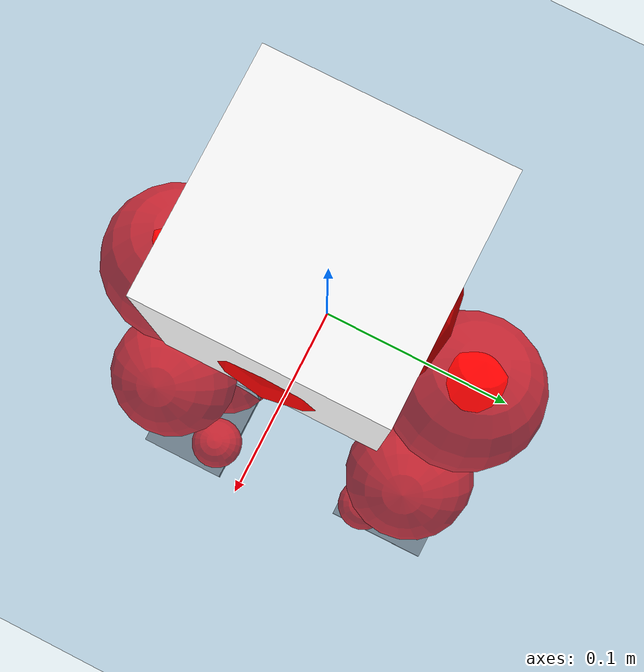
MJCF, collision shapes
<mujoco model="pi_12dof_release_v1">
  <compiler angle="radian" assetdir="assets" balanceinertia="true" inertiafromgeom="false"/>

  <option timestep="0.005" density="1.2" viscosity="2e-05"/>

  <size nkey="1"/>

  <visual>
    <quality shadowsize="8192"/>
    <map shadowclip="0.5"/>
  </visual>

  <default>
    <default class="/">
      <joint armature="0.01" damping="0.01" frictionloss="0.01"/>
      <geom contype="0" conaffinity="0" group="1" solref="-1000 -80"/>
      <site size="0.01 0.005 0.005" group="5"/>
      <general forcelimited="true" biastype="affine" gainprm="20" biasprm="0 -20 -0.5"/>
      <default class="foot">
        <geom size="0.0845 0.036 0.005" type="box" condim="6" group="4" priority="1" friction="0.9 0.2 0.2" solimp="0.015 1 0.005"/>
      </default>
      <default class="reward_collision_sphere">
        <geom group="5" rgba="1 0 0 1"/>
      </default>
    </default>
  </default>

  <asset>
    <texture type="skybox" colorspace="auto" name="//unnamed_texture_0" builtin="gradient" rgb1="0.95 0.95 0.95" rgb2="0.95 0.95 0.95" width="100" height="600"/>
    <texture type="2d" colorspace="auto" name="texplane" builtin="checker" rgb1="0.345 0.575 0.748" rgb2="0.345 0.575 0.748" markrgb="1 1 1" width="512" height="512"/>
    <material name="MatPlane" class="/" texture="texplane" texuniform="true" texrepeat="2 2" specular="0.9"/>
    <mesh name="baselink_1" class="/" file="baselink_1.STL"/>
    <mesh name="r_hip_pitch_link" class="/" file="r_hip_pitch_link.STL"/>
    <mesh name="r_hip_roll_link" class="/" file="r_hip_roll_link.STL"/>
    <mesh name="r_thigh_link" class="/" file="r_thigh_link.STL"/>
    <mesh name="r_calf_link" class="/" file="r_calf_link.STL"/>
    <mesh name="r_ankle_pitch_link" class="/" file="r_ankle_pitch_link.STL"/>
    <mesh name="r_ankle_roll_link" class="/" file="r_ankle_roll_link.STL"/>
    <mesh name="l_hip_pitch_link" class="/" file="l_hip_pitch_link.STL"/>
    <mesh name="l_hip_roll_link" class="/" file="l_hip_roll_link.STL"/>
    <mesh name="l_thigh_link" class="/" file="l_thigh_link.STL"/>
    <mesh name="l_calf_link" class="/" file="l_calf_link.STL"/>
    <mesh name="l_ankle_pitch_link" class="/" file="l_ankle_pitch_link.STL"/>
    <mesh name="l_ankle_roll_link" class="/" file="l_ankle_roll_link.STL"/>
  </asset>

  <worldbody>
    <geom name="floor" class="/" size="100 100 0.125" type="plane" group="0" material="MatPlane"/>
    <light name="toplight_shadow" class="/" pos="0 0 5" dir="0.0990148 0.0990148 -0.990148" type="directional" ambient="0.04 0.04 0.04" diffuse="0.55 0.55 0.55" specular="0.12 0.12 0.12"/>
    <light name="toplight_fill" class="/" pos="0 0 5" dir="0.0990148 0.0990148 -0.990148" type="directional" castshadow="false" ambient="0.04 0.04 0.04" diffuse="0.3 0.3 0.3" specular="0.08 0.08 0.08"/>
    <body name="trunk" pos="-0.000370848 -0.00179809 -0.000628851" quat="1 6.66987e-06 -2.57649e-05 9.02462e-06">
      <inertial pos="0.00473123 -0.00148418 0.0503975" quat="0.695459 0.0155421 0.00686432 0.718365" mass="2.81646" diaginertia="0.00885565 0.0109515 0.0127706"/>
      <joint name="//unnamed_joint_0" type="free"/>
      <geom name="//unnamed_geom_1" class="/" type="mesh" density="0" rgba="1 1 1 1" mesh="baselink_1"/>
      <geom name="//unnamed_geom_2" class="/" size="0.0547124 0.0547124 0.0547124" pos="0 0 0.100142" type="box" rgba="1 1 1 1"/>
      <geom name="//unnamed_geom_3" class="reward_collision_sphere" size="0.0601836" pos="0 0 0.0876246"/>
      <site name="imu" class="/" pos="0.00980555 0.0136291 -0.00903298" size="0.0109425"/>
      <camera name="track" class="/" pos="0 -2.08939 0" quat="0.707107 0.707107 0 0" mode="trackcom"/>
      <camera name="ego_camera" class="/" pos="0.0739699 0 0.225321" quat="-0.5 -0.5 0.5 0.5"/>
      <body name="r_hip_pitch_link" pos="0.00298717 -0.0251816 -0.0413738" quat="0.992181 0.000366584 -0.124805 -0.000659988">
        <inertial pos="0.00129094 -0.0586469 0.00281633" quat="-0.01923 0.706859 -0.0298791 0.706461" mass="0.47839" diaginertia="0.000101332 0.00012028 0.000252861"/>
        <joint name="r_hip_pitch_joint" class="/" pos="0 0 0" axis="0.0057631 -0.999958 -0.00717609" range="-1.73995 1.19399" armature="0.0105601" damping="0.0184943" frictionloss="0.0100621"/>
        <geom name="//unnamed_geom_4" class="/" type="mesh" density="0" rgba="0.75294 0.75294 0.75294 1" mesh="r_hip_pitch_link"/>
        <geom name="//unnamed_geom_5" class="/" size="0.000547124 0.000547124 0.000547124" type="box" rgba="0.75294 0.75294 0.75294 1"/>
        <body name="r_hip_roll_link" pos="0.000867299 -0.0601832 -0.00120015" quat="0.999999 0.00039626 0.000624866 0.000812627">
          <inertial pos="0.00066974 0.00286555 -0.0753471" quat="0.70613 -0.0808519 -0.0778137 0.699135" mass="0.50903" diaginertia="0.000306049 0.000342389 0.000379536"/>
          <joint name="r_hip_roll_joint" class="/" pos="0 0 0" axis="-0.999919 -0.00521125 -0.0115729" range="-0.108973 0.525652" armature="0.00952703" damping="0.03026" frictionloss="0.0114372"/>
          <geom name="//unnamed_geom_6" class="/" type="mesh" density="0" rgba="0.75294 0.75294 0.75294 1" mesh="r_hip_roll_link"/>
          <geom name="//unnamed_geom_7" class="/" size="0.000547124 0.000547124 0.000547124" type="box" rgba="0.75294 0.75294 0.75294 1"/>
          <geom name="//unnamed_geom_8" class="reward_collision_sphere" size="0.0437699"/>
          <body name="r_thigh_link" pos="-0.00200297 -0.000183621 -0.0882404" quat="0.999999 -0.00123067 0.000296052 0.000527509">
            <inertial pos="0.00268655 0.000978521 -0.058838" quat="0.737496 0.675348 -0.00200076 0.00017616" mass="0.148427" diaginertia="0.000114257 0.000118151 0.000179304"/>
            <joint name="r_thigh_joint" class="/" pos="0 0 0" axis="-0.00171054 -0.0051904 -0.999985" range="-0.346767 0.599664" armature="0.00940176" damping="0.00191804" frictionloss="0.0108243"/>
            <geom name="//unnamed_geom_9" class="/" type="mesh" density="0" rgba="0.75294 0.75294 0.75294 1" mesh="r_thigh_link"/>
            <geom name="//unnamed_geom_10" class="/" size="0.000547124 0.000547124 0.000547124" type="box" rgba="0.75294 0.75294 0.75294 1"/>
            <body name="r_calf_link" pos="0.00188249 -0.00495828 -0.0901226" quat="0.947577 -1.39111e-05 0.319526 0.000126055">
              <inertial pos="-0.00316969 0.000509841 -0.0859649" quat="0.999967 -0.00577946 0.00400087 0.00412498" mass="1.0445" diaginertia="0.0031692 0.0043838 0.000542504"/>
              <joint name="r_calf_joint" class="/" pos="0 0 0" axis="0.000525167 -0.999923 0.0124134" range="-1.67418 0.703522" armature="0.0100577" damping="0.0134046" frictionloss="0.0124714"/>
              <geom name="//unnamed_geom_11" class="/" type="mesh" density="0" rgba="0.75294 0.75294 0.75294 1" mesh="r_calf_link"/>
              <geom name="//unnamed_geom_12" class="/" size="0.000547124 0.000547124 0.000547124" type="box" rgba="0.75294 0.75294 0.75294 1"/>
              <geom name="//unnamed_geom_13" class="reward_collision_sphere" size="0.0437699"/>
              <body name="r_ankle_pitch_link" pos="0.000632864 -0.000817617 -0.172165" quat="0.980239 0.000972554 -0.197815 0.000224585">
                <inertial pos="0.00193208 0.00453495 0.000579322" quat="0.000199347 0.704538 0.0103584 0.709591" mass="0.240891" diaginertia="0.000289223 0.000279826 0.000362339"/>
                <joint name="r_ankle_pitch_joint" class="/" pos="0 0 0" axis="-0.000158092 -1 5.52126e-05" range="-1.24058 0.50415" armature="0.0104556" damping="0.0206286" frictionloss="0.00956251"/>
                <geom name="//unnamed_geom_14" class="/" type="mesh" density="0" rgba="0.75294 0.75294 0.75294 1" mesh="r_ankle_pitch_link"/>
                <geom name="//unnamed_geom_15" class="/" size="0.0426757 0.0437699 0.0273562" type="box" rgba="0.75294 0.75294 0.75294 1"/>
                <body name="r_ankle_roll_link" pos="0.0755811 0.00381052 -0.00210828" quat="1 -0.000464799 -0.000138818 -0.000116349">
                  <inertial pos="-0.020593 9.81724e-05 -0.0158599" quat="0.56108 0.435586 0.422734 0.562806" mass="0.674428" diaginertia="0.00107449 0.00129213 0.000895606"/>
                  <joint name="r_ankle_roll_joint" class="/" pos="0 0 0" axis="-0.999998 -0.00146314 0.00140784" stiffness="0.00902312" range="-0.14112 0.1465" armature="0.0108322" damping="0" frictionloss="0.00941507"/>
                  <geom name="//unnamed_geom_16" class="/" type="mesh" density="0" rgba="0.75294 0.75294 0.75294 1" mesh="r_ankle_roll_link"/>
                  <geom name="//unnamed_geom_17" class="/" type="mesh" rgba="0.75294 0.75294 0.75294 1" mesh="r_ankle_roll_link"/>
                  <geom name="right_foot" class="foot" size="0.0904671 0.0360167 0.00514596" pos="-0.0502995 0 -0.0550783"/>
                  <geom name="//unnamed_geom_19" class="reward_collision_sphere" size="0.0437699" pos="-0.0493133 0 -0.0250356"/>
                  <geom name="//unnamed_geom_20" class="reward_collision_sphere" size="0.021885" pos="0.014794 0.0208939 -0.0500712"/>
                  <geom name="//unnamed_geom_21" class="reward_collision_sphere" size="0.021885" pos="-0.118352 0.0208939 -0.0500712"/>
                  <site name="right_foot" class="foot" pos="-0.0502995 0 -0.0550783" size="0.0109425"/>
                </body>
              </body>
            </body>
          </body>
        </body>
      </body>
      <body name="l_hip_pitch_link" pos="0.000273075 0.0247055 -0.0406819" quat="0.992178 -0.000411558 -0.124828 0.00112474">
        <inertial pos="0.000641102 0.0553531 0.00263384" quat="-0.033056 0.705886 0.021089 0.707239" mass="0.541328" diaginertia="0.000124578 0.00013536 0.000319295"/>
        <joint name="l_hip_pitch_joint" class="/" pos="0 0 0" axis="0.000966773 0.999999 -0.00102889" stiffness="0.00102725" range="-1.23844 1.75605" armature="0.0113639" damping="0.00444019" frictionloss="0.0122558"/>
        <geom name="//unnamed_geom_22" class="/" type="mesh" density="0" rgba="0.75294 0.75294 0.75294 1" mesh="l_hip_pitch_link"/>
        <geom name="//unnamed_geom_23" class="/" size="0.000547124 0.000547124 0.000547124" type="box" rgba="0.75294 0.75294 0.75294 1"/>
        <body name="l_hip_roll_link" pos="-0.00313987 0.0589796 0.000890765" quat="1 -0.000368809 0.000125117 -0.000120545">
          <inertial pos="-0.00233113 0.000542218 -0.076072" quat="0.689604 -0.0749982 -0.0800183 0.715834" mass="0.518117" diaginertia="0.000313721 0.000368443 0.000410687"/>
          <joint name="l_hip_roll_joint" class="/" pos="0 0 0" axis="-0.999969 0.00389039 0.00688087" range="-0.502363 0.107036" armature="0.0117444" damping="0.00628372" frictionloss="0.0123354"/>
          <geom name="//unnamed_geom_24" class="/" type="mesh" density="0" rgba="0.75294 0.75294 0.75294 1" mesh="l_hip_roll_link"/>
          <geom name="//unnamed_geom_25" class="/" size="0.000547124 0.000547124 0.000547124" type="box" rgba="0.75294 0.75294 0.75294 1"/>
          <geom name="//unnamed_geom_26" class="reward_collision_sphere" size="0.0437699"/>
          <body name="l_thigh_link" pos="-0.0032652 0.000835457 -0.0851844" quat="1 -0.000359715 -0.00048343 -9.00034e-05">
            <inertial pos="0.000957544 -0.00183081 -0.0609407" quat="0.675658 0.737199 0.00487597 -0.000249615" mass="0.157545" diaginertia="0.000121926 0.000123171 0.000184329"/>
            <joint name="l_thigh_joint" class="/" pos="0 0 0" axis="0.00176614 0.000835718 -0.999998" stiffness="0.000606401" range="-0.598814 0.304164" armature="0.00953732" damping="0.00968378" frictionloss="0.0107538"/>
            <geom name="//unnamed_geom_27" class="/" type="mesh" density="0" rgba="0.75294 0.75294 0.75294 1" mesh="l_thigh_link"/>
            <geom name="//unnamed_geom_28" class="/" size="0.000547124 0.000547124 0.000547124" type="box" rgba="0.75294 0.75294 0.75294 1"/>
            <body name="l_calf_link" pos="0.00038367 0.00034632 -0.0900518" quat="0.94765 -0.000533577 0.31931 7.91594e-05">
              <inertial pos="0.00239505 0.00494585 -0.0898406" quat="0.999923 0.00559421 -0.00619486 0.00922767" mass="1.08862" diaginertia="0.00347977 0.0046458 0.000556816"/>
              <joint name="l_calf_joint" class="/" pos="0 0 0" axis="-0.0133511 0.999888 -0.00669588" range="-0.622205 1.60071" armature="0.0120541" damping="0.0168812" frictionloss="0.0122729"/>
              <geom name="//unnamed_geom_29" class="/" type="mesh" density="0" rgba="0.75294 0.75294 0.75294 1" mesh="l_calf_link"/>
              <geom name="//unnamed_geom_30" class="/" size="0.000547124 0.000547124 0.000547124" type="box" rgba="0.75294 0.75294 0.75294 1"/>
              <geom name="//unnamed_geom_31" class="reward_collision_sphere" size="0.0437699"/>
              <body name="l_ankle_pitch_link" pos="0.000572732 0.00285901 -0.173854" quat="0.980048 0.000151546 -0.198763 0.000225789">
                <inertial pos="0.00475168 -0.00165349 0.00275607" quat="0.00127944 0.703404 0.00266289 0.710784" mass="0.22008" diaginertia="0.000275164 0.000263757 0.000355675"/>
                <joint name="l_ankle_pitch_joint" class="/" pos="0 0 0" axis="-0.00474164 0.999989 0.000205798" range="-0.538141 1.35448" armature="0.0107238" damping="0.0157036" frictionloss="0.0108996"/>
                <geom name="//unnamed_geom_32" class="/" type="mesh" density="0" rgba="0.75294 0.75294 0.75294 1" mesh="l_ankle_pitch_link"/>
                <geom name="//unnamed_geom_33" class="/" size="0.0426757 0.0437699 0.0273562" type="box" rgba="0.75294 0.75294 0.75294 1"/>
                <body name="l_ankle_roll_link" pos="0.0757353 0.00425838 0.000969156" quat="0.999999 0.000980801 -0.000324266 0.000926378">
                  <inertial pos="-0.0246326 -0.000491226 -0.0203996" quat="0.552238 0.438588 0.429594 0.564023" mass="0.684443" diaginertia="0.00105744 0.00124511 0.000878683"/>
                  <joint name="l_ankle_roll_joint" class="/" pos="0 0 0" axis="-0.999993 -0.00351573 0.00134538" range="-0.164163 0.113631" armature="0.0110293" damping="0.0100986" frictionloss="0.0103223"/>
                  <geom name="//unnamed_geom_34" class="/" type="mesh" density="0" rgba="0.75294 0.75294 0.75294 1" mesh="l_ankle_roll_link"/>
                  <geom name="//unnamed_geom_35" class="/" type="mesh" rgba="0.75294 0.75294 0.75294 1" mesh="l_ankle_roll_link"/>
                  <geom name="left_foot" class="foot" size="0.0836207 0.0408266 0.00541023" pos="-0.0502995 0 -0.0550783"/>
                  <geom name="//unnamed_geom_37" class="reward_collision_sphere" size="0.0437699" pos="-0.0493133 0 -0.0250356"/>
                  <geom name="//unnamed_geom_38" class="reward_collision_sphere" size="0.021885" pos="0.014794 -0.0208939 -0.0500712"/>
                  <geom name="//unnamed_geom_39" class="reward_collision_sphere" size="0.021885" pos="-0.118352 -0.0208939 -0.0500712"/>
                  <site name="left_foot" class="foot" pos="-0.0502995 0 -0.0550783" size="0.0109425"/>
                </body>
              </body>
            </body>
          </body>
        </body>
      </body>
    </body>
  </worldbody>

  <contact>
    <pair class="/" geom1="floor" geom2="right_foot" name="//unnamed_contact_1"/>
    <pair class="/" geom1="floor" geom2="left_foot" name="//unnamed_contact_0"/>
  </contact>

  <actuator>
    <general name="r_hip_pitch_joint" class="/" joint="r_hip_pitch_joint" forcerange="-21.5002 21.5002" gainprm="20.4627" biasprm="0 -20.4627 -0.528323"/>
    <general name="r_hip_roll_joint" class="/" joint="r_hip_roll_joint" forcerange="-23.2692 23.2692" gainprm="20.4627" biasprm="0 -20.4627 -0.528323"/>
    <general name="r_thigh_joint" class="/" joint="r_thigh_joint" forcerange="-25.067 25.067" gainprm="20.4627" biasprm="0 -20.4627 -0.528323"/>
    <general name="r_calf_joint" class="/" joint="r_calf_joint" forcerange="-22.2434 22.2434" gainprm="20.4627" biasprm="0 -20.4627 -0.528323"/>
    <general name="r_ankle_pitch_joint" class="/" joint="r_ankle_pitch_joint" forcerange="-23.1261 23.1261" gainprm="20.4627" biasprm="0 -20.4627 -0.528323"/>
    <general name="r_ankle_roll_joint" class="/" joint="r_ankle_roll_joint" forcerange="-23.0898 23.0898" gainprm="20.4627" biasprm="0 -20.4627 -0.528323"/>
    <general name="l_hip_pitch_joint" class="/" joint="l_hip_pitch_joint" forcerange="-22.0272 22.0272" gainprm="20.4627" biasprm="0 -20.4627 -0.528323"/>
    <general name="l_hip_roll_joint" class="/" joint="l_hip_roll_joint" forcerange="-20.9549 20.9549" gainprm="20.4627" biasprm="0 -20.4627 -0.528323"/>
    <general name="l_thigh_joint" class="/" joint="l_thigh_joint" forcerange="-21.0814 21.0814" gainprm="20.4627" biasprm="0 -20.4627 -0.528323"/>
    <general name="l_calf_joint" class="/" joint="l_calf_joint" forcerange="-23.0823 23.0823" gainprm="20.4627" biasprm="0 -20.4627 -0.528323"/>
    <general name="l_ankle_pitch_joint" class="/" joint="l_ankle_pitch_joint" forcerange="-23.0757 23.0757" gainprm="20.4627" biasprm="0 -20.4627 -0.528323"/>
    <general name="l_ankle_roll_joint" class="/" joint="l_ankle_roll_joint" forcerange="-25.0804 25.0804" gainprm="20.4627" biasprm="0 -20.4627 -0.528323"/>
  </actuator>

  <sensor>
    <gyro site="imu" name="imu_angular_velocity"/>
    <velocimeter site="imu" name="imu_linear_velocity"/>
    <framelinvel objtype="site" objname="left_foot" name="left_foot_global_linear_velocity"/>
    <framelinvel objtype="site" objname="right_foot" name="right_foot_global_linear_velocity"/>
  </sensor>

  <keyframe>
    <key name="home" qpos="0 0 0.291 1 0 0 0 0.4 0 0 -0.8 0.4 0 -0.4 0 0 0.8 -0.4 0"/>
  </keyframe>
</mujoco>
